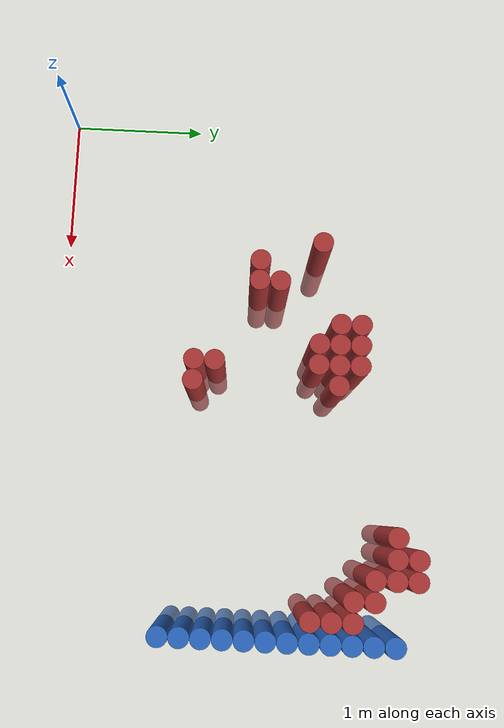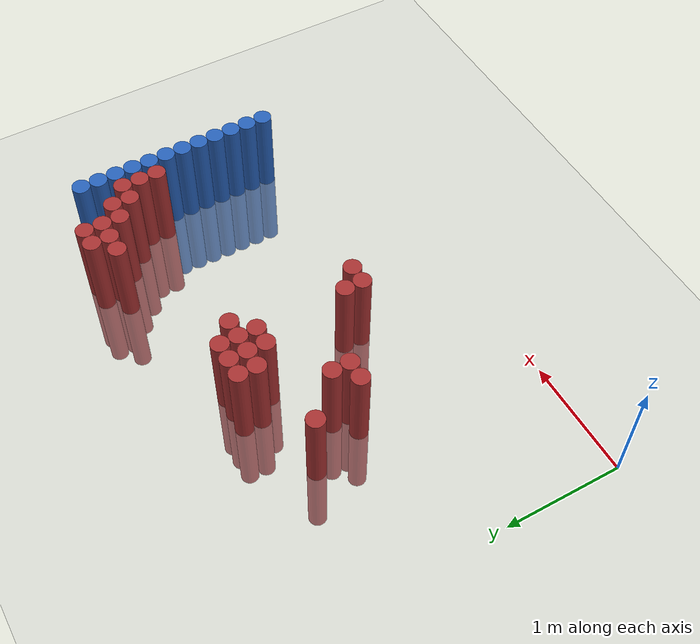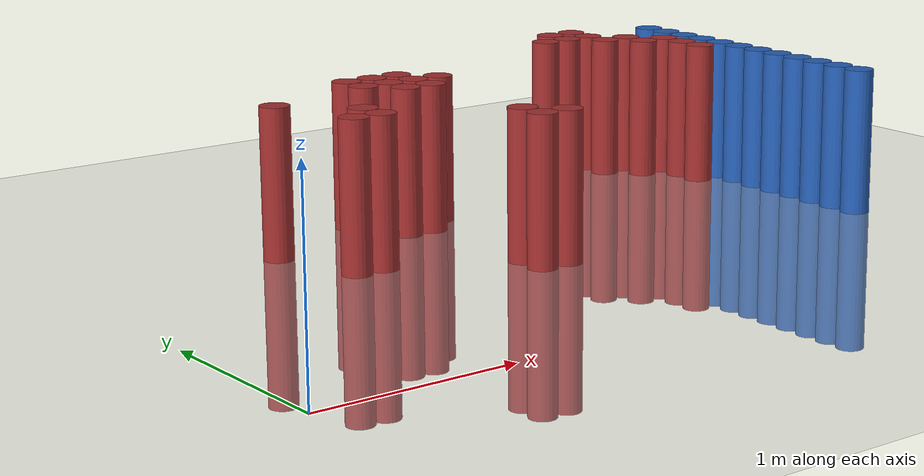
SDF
<sdf version="1.6">
 <world name="default">
  <model name="ground_plane">
   <static>1</static>
   <link name="link">
    <collision name="collision">
     <geometry><plane><normal>0 0 1</normal><size>100 100</size></plane></geometry>
     <surface><friction><ode><mu>100</mu><mu2>50</mu2></ode></friction></surface>
    </collision>
    <visual name="visual">
     <cast_shadows>0</cast_shadows>
     <geometry><plane><normal>0 0 1</normal><size>100 100</size></plane></geometry>
     <material>
      <script><uri>file://media/materials/scripts/gazebo.material</uri><name>Gazebo/Grey</name></script>
     </material>
    </visual>
   </link>
  </model>
  <model name="unit_cylinder_128">
   <static>1</static>
   <pose>3.925000 1.075000 0.000000 0.000000 0.000000 0.000000</pose>
   <link name="link">
    <inertial>
     <mass>1</mass>
     <inertia><ixx>0.145833</ixx><ixy>0</ixy><ixz>0</ixz><iyy>0.145833</iyy><iyz>0</iyz><izz>0.125</izz></inertia>
    </inertial>
    <collision name="collision">
     <geometry><cylinder><radius>0.075000</radius><length>1.5</length></cylinder></geometry>
    </collision>
    <visual name="visual">
     <geometry><cylinder><radius>0.075000</radius><length>1.5</length></cylinder></geometry>
     <material>
      <ambient>0.152000 0.379000 0.720000 1</ambient>
      <diffuse>0.152000 0.379000 0.720000 1</diffuse>
     </material>
     <material>
      <script><name>Gazebo/Grey</name><uri>file://media/materials/scripts/gazebo.material</uri></script>
     </material>
    </visual>
   </link>
  </model>
  <model name="unit_cylinder_130">
   <static>1</static>
   <pose>3.925000 1.225000 0.000000 0.000000 0.000000 0.000000</pose>
   <link name="link">
    <inertial>
     <mass>1</mass>
     <inertia><ixx>0.145833</ixx><ixy>0</ixy><ixz>0</ixz><iyy>0.145833</iyy><iyz>0</iyz><izz>0.125</izz></inertia>
    </inertial>
    <collision name="collision">
     <geometry><cylinder><radius>0.075000</radius><length>1.5</length></cylinder></geometry>
    </collision>
    <visual name="visual">
     <geometry><cylinder><radius>0.075000</radius><length>1.5</length></cylinder></geometry>
     <material>
      <ambient>0.152000 0.379000 0.720000 1</ambient>
      <diffuse>0.152000 0.379000 0.720000 1</diffuse>
     </material>
     <material>
      <script><name>Gazebo/Grey</name><uri>file://media/materials/scripts/gazebo.material</uri></script>
     </material>
    </visual>
   </link>
  </model>
  <model name="unit_cylinder_132">
   <static>1</static>
   <pose>3.925000 1.375000 0.000000 0.000000 0.000000 0.000000</pose>
   <link name="link">
    <inertial>
     <mass>1</mass>
     <inertia><ixx>0.145833</ixx><ixy>0</ixy><ixz>0</ixz><iyy>0.145833</iyy><iyz>0</iyz><izz>0.125</izz></inertia>
    </inertial>
    <collision name="collision">
     <geometry><cylinder><radius>0.075000</radius><length>1.5</length></cylinder></geometry>
    </collision>
    <visual name="visual">
     <geometry><cylinder><radius>0.075000</radius><length>1.5</length></cylinder></geometry>
     <material>
      <ambient>0.152000 0.379000 0.720000 1</ambient>
      <diffuse>0.152000 0.379000 0.720000 1</diffuse>
     </material>
     <material>
      <script><name>Gazebo/Grey</name><uri>file://media/materials/scripts/gazebo.material</uri></script>
     </material>
    </visual>
   </link>
  </model>
  <model name="unit_cylinder_134">
   <static>1</static>
   <pose>3.925000 1.525000 0.000000 0.000000 0.000000 0.000000</pose>
   <link name="link">
    <inertial>
     <mass>1</mass>
     <inertia><ixx>0.145833</ixx><ixy>0</ixy><ixz>0</ixz><iyy>0.145833</iyy><iyz>0</iyz><izz>0.125</izz></inertia>
    </inertial>
    <collision name="collision">
     <geometry><cylinder><radius>0.075000</radius><length>1.5</length></cylinder></geometry>
    </collision>
    <visual name="visual">
     <geometry><cylinder><radius>0.075000</radius><length>1.5</length></cylinder></geometry>
     <material>
      <ambient>0.152000 0.379000 0.720000 1</ambient>
      <diffuse>0.152000 0.379000 0.720000 1</diffuse>
     </material>
     <material>
      <script><name>Gazebo/Grey</name><uri>file://media/materials/scripts/gazebo.material</uri></script>
     </material>
    </visual>
   </link>
  </model>
  <model name="unit_cylinder_136">
   <static>1</static>
   <pose>3.925000 1.675000 0.000000 0.000000 0.000000 0.000000</pose>
   <link name="link">
    <inertial>
     <mass>1</mass>
     <inertia><ixx>0.145833</ixx><ixy>0</ixy><ixz>0</ixz><iyy>0.145833</iyy><iyz>0</iyz><izz>0.125</izz></inertia>
    </inertial>
    <collision name="collision">
     <geometry><cylinder><radius>0.075000</radius><length>1.5</length></cylinder></geometry>
    </collision>
    <visual name="visual">
     <geometry><cylinder><radius>0.075000</radius><length>1.5</length></cylinder></geometry>
     <material>
      <ambient>0.152000 0.379000 0.720000 1</ambient>
      <diffuse>0.152000 0.379000 0.720000 1</diffuse>
     </material>
     <material>
      <script><name>Gazebo/Grey</name><uri>file://media/materials/scripts/gazebo.material</uri></script>
     </material>
    </visual>
   </link>
  </model>
  <model name="unit_cylinder_138">
   <static>1</static>
   <pose>3.925000 1.825000 0.000000 0.000000 0.000000 0.000000</pose>
   <link name="link">
    <inertial>
     <mass>1</mass>
     <inertia><ixx>0.145833</ixx><ixy>0</ixy><ixz>0</ixz><iyy>0.145833</iyy><iyz>0</iyz><izz>0.125</izz></inertia>
    </inertial>
    <collision name="collision">
     <geometry><cylinder><radius>0.075000</radius><length>1.5</length></cylinder></geometry>
    </collision>
    <visual name="visual">
     <geometry><cylinder><radius>0.075000</radius><length>1.5</length></cylinder></geometry>
     <material>
      <ambient>0.152000 0.379000 0.720000 1</ambient>
      <diffuse>0.152000 0.379000 0.720000 1</diffuse>
     </material>
     <material>
      <script><name>Gazebo/Grey</name><uri>file://media/materials/scripts/gazebo.material</uri></script>
     </material>
    </visual>
   </link>
  </model>
  <model name="unit_cylinder_140">
   <static>1</static>
   <pose>3.925000 1.975000 0.000000 0.000000 0.000000 0.000000</pose>
   <link name="link">
    <inertial>
     <mass>1</mass>
     <inertia><ixx>0.145833</ixx><ixy>0</ixy><ixz>0</ixz><iyy>0.145833</iyy><iyz>0</iyz><izz>0.125</izz></inertia>
    </inertial>
    <collision name="collision">
     <geometry><cylinder><radius>0.075000</radius><length>1.5</length></cylinder></geometry>
    </collision>
    <visual name="visual">
     <geometry><cylinder><radius>0.075000</radius><length>1.5</length></cylinder></geometry>
     <material>
      <ambient>0.152000 0.379000 0.720000 1</ambient>
      <diffuse>0.152000 0.379000 0.720000 1</diffuse>
     </material>
     <material>
      <script><name>Gazebo/Grey</name><uri>file://media/materials/scripts/gazebo.material</uri></script>
     </material>
    </visual>
   </link>
  </model>
  <model name="unit_cylinder_142">
   <static>1</static>
   <pose>3.925000 2.125000 0.000000 0.000000 0.000000 0.000000</pose>
   <link name="link">
    <inertial>
     <mass>1</mass>
     <inertia><ixx>0.145833</ixx><ixy>0</ixy><ixz>0</ixz><iyy>0.145833</iyy><iyz>0</iyz><izz>0.125</izz></inertia>
    </inertial>
    <collision name="collision">
     <geometry><cylinder><radius>0.075000</radius><length>1.5</length></cylinder></geometry>
    </collision>
    <visual name="visual">
     <geometry><cylinder><radius>0.075000</radius><length>1.5</length></cylinder></geometry>
     <material>
      <ambient>0.152000 0.379000 0.720000 1</ambient>
      <diffuse>0.152000 0.379000 0.720000 1</diffuse>
     </material>
     <material>
      <script><name>Gazebo/Grey</name><uri>file://media/materials/scripts/gazebo.material</uri></script>
     </material>
    </visual>
   </link>
  </model>
  <model name="unit_cylinder_144">
   <static>1</static>
   <pose>3.925000 2.275000 0.000000 0.000000 0.000000 0.000000</pose>
   <link name="link">
    <inertial>
     <mass>1</mass>
     <inertia><ixx>0.145833</ixx><ixy>0</ixy><ixz>0</ixz><iyy>0.145833</iyy><iyz>0</iyz><izz>0.125</izz></inertia>
    </inertial>
    <collision name="collision">
     <geometry><cylinder><radius>0.075000</radius><length>1.5</length></cylinder></geometry>
    </collision>
    <visual name="visual">
     <geometry><cylinder><radius>0.075000</radius><length>1.5</length></cylinder></geometry>
     <material>
      <ambient>0.152000 0.379000 0.720000 1</ambient>
      <diffuse>0.152000 0.379000 0.720000 1</diffuse>
     </material>
     <material>
      <script><name>Gazebo/Grey</name><uri>file://media/materials/scripts/gazebo.material</uri></script>
     </material>
    </visual>
   </link>
  </model>
  <model name="unit_cylinder_146">
   <static>1</static>
   <pose>3.925000 2.425000 0.000000 0.000000 0.000000 0.000000</pose>
   <link name="link">
    <inertial>
     <mass>1</mass>
     <inertia><ixx>0.145833</ixx><ixy>0</ixy><ixz>0</ixz><iyy>0.145833</iyy><iyz>0</iyz><izz>0.125</izz></inertia>
    </inertial>
    <collision name="collision">
     <geometry><cylinder><radius>0.075000</radius><length>1.5</length></cylinder></geometry>
    </collision>
    <visual name="visual">
     <geometry><cylinder><radius>0.075000</radius><length>1.5</length></cylinder></geometry>
     <material>
      <ambient>0.152000 0.379000 0.720000 1</ambient>
      <diffuse>0.152000 0.379000 0.720000 1</diffuse>
     </material>
     <material>
      <script><name>Gazebo/Grey</name><uri>file://media/materials/scripts/gazebo.material</uri></script>
     </material>
    </visual>
   </link>
  </model>
  <model name="unit_cylinder_148">
   <static>1</static>
   <pose>3.925000 2.575000 0.000000 0.000000 0.000000 0.000000</pose>
   <link name="link">
    <inertial>
     <mass>1</mass>
     <inertia><ixx>0.145833</ixx><ixy>0</ixy><ixz>0</ixz><iyy>0.145833</iyy><iyz>0</iyz><izz>0.125</izz></inertia>
    </inertial>
    <collision name="collision">
     <geometry><cylinder><radius>0.075000</radius><length>1.5</length></cylinder></geometry>
    </collision>
    <visual name="visual">
     <geometry><cylinder><radius>0.075000</radius><length>1.5</length></cylinder></geometry>
     <material>
      <ambient>0.152000 0.379000 0.720000 1</ambient>
      <diffuse>0.152000 0.379000 0.720000 1</diffuse>
     </material>
     <material>
      <script><name>Gazebo/Grey</name><uri>file://media/materials/scripts/gazebo.material</uri></script>
     </material>
    </visual>
   </link>
  </model>
  <model name="unit_cylinder_374">
   <static>1</static>
   <pose>1.075000 1.975000 0.000000 0.000000 0.000000 0.000000</pose>
   <link name="link">
    <inertial>
     <mass>1</mass>
     <inertia><ixx>0.145833</ixx><ixy>0</ixy><ixz>0</ixz><iyy>0.145833</iyy><iyz>0</iyz><izz>0.125</izz></inertia>
    </inertial>
    <collision name="collision">
     <geometry><cylinder><radius>0.075000</radius><length>1.5</length></cylinder></geometry>
    </collision>
    <visual name="visual">
     <geometry><cylinder><radius>0.075000</radius><length>1.5</length></cylinder></geometry>
     <material>
      <ambient>0.648000 0.192000 0.192000 1</ambient>
      <diffuse>0.648000 0.192000 0.192000 1</diffuse>
     </material>
     <material>
      <script><name>Gazebo/Grey</name><uri>file://media/materials/scripts/gazebo.material</uri></script>
     </material>
    </visual>
   </link>
  </model>
  <model name="unit_cylinder_383">
   <static>1</static>
   <pose>1.225000 1.525000 0.000000 0.000000 0.000000 0.000000</pose>
   <link name="link">
    <inertial>
     <mass>1</mass>
     <inertia><ixx>0.145833</ixx><ixy>0</ixy><ixz>0</ixz><iyy>0.145833</iyy><iyz>0</iyz><izz>0.125</izz></inertia>
    </inertial>
    <collision name="collision">
     <geometry><cylinder><radius>0.075000</radius><length>1.5</length></cylinder></geometry>
    </collision>
    <visual name="visual">
     <geometry><cylinder><radius>0.075000</radius><length>1.5</length></cylinder></geometry>
     <material>
      <ambient>0.648000 0.192000 0.192000 1</ambient>
      <diffuse>0.648000 0.192000 0.192000 1</diffuse>
     </material>
     <material>
      <script><name>Gazebo/Grey</name><uri>file://media/materials/scripts/gazebo.material</uri></script>
     </material>
    </visual>
   </link>
  </model>
  <model name="unit_cylinder_392">
   <static>1</static>
   <pose>1.375000 1.525000 0.000000 0.000000 0.000000 0.000000</pose>
   <link name="link">
    <inertial>
     <mass>1</mass>
     <inertia><ixx>0.145833</ixx><ixy>0</ixy><ixz>0</ixz><iyy>0.145833</iyy><iyz>0</iyz><izz>0.125</izz></inertia>
    </inertial>
    <collision name="collision">
     <geometry><cylinder><radius>0.075000</radius><length>1.5</length></cylinder></geometry>
    </collision>
    <visual name="visual">
     <geometry><cylinder><radius>0.075000</radius><length>1.5</length></cylinder></geometry>
     <material>
      <ambient>0.648000 0.192000 0.192000 1</ambient>
      <diffuse>0.648000 0.192000 0.192000 1</diffuse>
     </material>
     <material>
      <script><name>Gazebo/Grey</name><uri>file://media/materials/scripts/gazebo.material</uri></script>
     </material>
    </visual>
   </link>
  </model>
  <model name="unit_cylinder_393">
   <static>1</static>
   <pose>1.375000 1.675000 0.000000 0.000000 0.000000 0.000000</pose>
   <link name="link">
    <inertial>
     <mass>1</mass>
     <inertia><ixx>0.145833</ixx><ixy>0</ixy><ixz>0</ixz><iyy>0.145833</iyy><iyz>0</iyz><izz>0.125</izz></inertia>
    </inertial>
    <collision name="collision">
     <geometry><cylinder><radius>0.075000</radius><length>1.5</length></cylinder></geometry>
    </collision>
    <visual name="visual">
     <geometry><cylinder><radius>0.075000</radius><length>1.5</length></cylinder></geometry>
     <material>
      <ambient>0.648000 0.192000 0.192000 1</ambient>
      <diffuse>0.648000 0.192000 0.192000 1</diffuse>
     </material>
     <material>
      <script><name>Gazebo/Grey</name><uri>file://media/materials/scripts/gazebo.material</uri></script>
     </material>
    </visual>
   </link>
  </model>
  <model name="unit_cylinder_407">
   <static>1</static>
   <pose>1.675000 2.125000 0.000000 0.000000 0.000000 0.000000</pose>
   <link name="link">
    <inertial>
     <mass>1</mass>
     <inertia><ixx>0.145833</ixx><ixy>0</ixy><ixz>0</ixz><iyy>0.145833</iyy><iyz>0</iyz><izz>0.125</izz></inertia>
    </inertial>
    <collision name="collision">
     <geometry><cylinder><radius>0.075000</radius><length>1.5</length></cylinder></geometry>
    </collision>
    <visual name="visual">
     <geometry><cylinder><radius>0.075000</radius><length>1.5</length></cylinder></geometry>
     <material>
      <ambient>0.648000 0.192000 0.192000 1</ambient>
      <diffuse>0.648000 0.192000 0.192000 1</diffuse>
     </material>
     <material>
      <script><name>Gazebo/Grey</name><uri>file://media/materials/scripts/gazebo.material</uri></script>
     </material>
    </visual>
   </link>
  </model>
  <model name="unit_cylinder_408">
   <static>1</static>
   <pose>1.675000 2.275000 0.000000 0.000000 0.000000 0.000000</pose>
   <link name="link">
    <inertial>
     <mass>1</mass>
     <inertia><ixx>0.145833</ixx><ixy>0</ixy><ixz>0</ixz><iyy>0.145833</iyy><iyz>0</iyz><izz>0.125</izz></inertia>
    </inertial>
    <collision name="collision">
     <geometry><cylinder><radius>0.075000</radius><length>1.5</length></cylinder></geometry>
    </collision>
    <visual name="visual">
     <geometry><cylinder><radius>0.075000</radius><length>1.5</length></cylinder></geometry>
     <material>
      <ambient>0.648000 0.192000 0.192000 1</ambient>
      <diffuse>0.648000 0.192000 0.192000 1</diffuse>
     </material>
     <material>
      <script><name>Gazebo/Grey</name><uri>file://media/materials/scripts/gazebo.material</uri></script>
     </material>
    </visual>
   </link>
  </model>
  <model name="unit_cylinder_411">
   <static>1</static>
   <pose>1.825000 1.975000 0.000000 0.000000 0.000000 0.000000</pose>
   <link name="link">
    <inertial>
     <mass>1</mass>
     <inertia><ixx>0.145833</ixx><ixy>0</ixy><ixz>0</ixz><iyy>0.145833</iyy><iyz>0</iyz><izz>0.125</izz></inertia>
    </inertial>
    <collision name="collision">
     <geometry><cylinder><radius>0.075000</radius><length>1.5</length></cylinder></geometry>
    </collision>
    <visual name="visual">
     <geometry><cylinder><radius>0.075000</radius><length>1.5</length></cylinder></geometry>
     <material>
      <ambient>0.648000 0.192000 0.192000 1</ambient>
      <diffuse>0.648000 0.192000 0.192000 1</diffuse>
     </material>
     <material>
      <script><name>Gazebo/Grey</name><uri>file://media/materials/scripts/gazebo.material</uri></script>
     </material>
    </visual>
   </link>
  </model>
  <model name="unit_cylinder_412">
   <static>1</static>
   <pose>1.825000 2.125000 0.000000 0.000000 0.000000 0.000000</pose>
   <link name="link">
    <inertial>
     <mass>1</mass>
     <inertia><ixx>0.145833</ixx><ixy>0</ixy><ixz>0</ixz><iyy>0.145833</iyy><iyz>0</iyz><izz>0.125</izz></inertia>
    </inertial>
    <collision name="collision">
     <geometry><cylinder><radius>0.075000</radius><length>1.5</length></cylinder></geometry>
    </collision>
    <visual name="visual">
     <geometry><cylinder><radius>0.075000</radius><length>1.5</length></cylinder></geometry>
     <material>
      <ambient>0.648000 0.192000 0.192000 1</ambient>
      <diffuse>0.648000 0.192000 0.192000 1</diffuse>
     </material>
     <material>
      <script><name>Gazebo/Grey</name><uri>file://media/materials/scripts/gazebo.material</uri></script>
     </material>
    </visual>
   </link>
  </model>
  <model name="unit_cylinder_413">
   <static>1</static>
   <pose>1.825000 2.275000 0.000000 0.000000 0.000000 0.000000</pose>
   <link name="link">
    <inertial>
     <mass>1</mass>
     <inertia><ixx>0.145833</ixx><ixy>0</ixy><ixz>0</ixz><iyy>0.145833</iyy><iyz>0</iyz><izz>0.125</izz></inertia>
    </inertial>
    <collision name="collision">
     <geometry><cylinder><radius>0.075000</radius><length>1.5</length></cylinder></geometry>
    </collision>
    <visual name="visual">
     <geometry><cylinder><radius>0.075000</radius><length>1.5</length></cylinder></geometry>
     <material>
      <ambient>0.648000 0.192000 0.192000 1</ambient>
      <diffuse>0.648000 0.192000 0.192000 1</diffuse>
     </material>
     <material>
      <script><name>Gazebo/Grey</name><uri>file://media/materials/scripts/gazebo.material</uri></script>
     </material>
    </visual>
   </link>
  </model>
  <model name="unit_cylinder_417">
   <static>1</static>
   <pose>1.975000 1.075000 0.000000 0.000000 0.000000 0.000000</pose>
   <link name="link">
    <inertial>
     <mass>1</mass>
     <inertia><ixx>0.145833</ixx><ixy>0</ixy><ixz>0</ixz><iyy>0.145833</iyy><iyz>0</iyz><izz>0.125</izz></inertia>
    </inertial>
    <collision name="collision">
     <geometry><cylinder><radius>0.075000</radius><length>1.5</length></cylinder></geometry>
    </collision>
    <visual name="visual">
     <geometry><cylinder><radius>0.075000</radius><length>1.5</length></cylinder></geometry>
     <material>
      <ambient>0.648000 0.192000 0.192000 1</ambient>
      <diffuse>0.648000 0.192000 0.192000 1</diffuse>
     </material>
     <material>
      <script><name>Gazebo/Grey</name><uri>file://media/materials/scripts/gazebo.material</uri></script>
     </material>
    </visual>
   </link>
  </model>
  <model name="unit_cylinder_418">
   <static>1</static>
   <pose>1.975000 1.225000 0.000000 0.000000 0.000000 0.000000</pose>
   <link name="link">
    <inertial>
     <mass>1</mass>
     <inertia><ixx>0.145833</ixx><ixy>0</ixy><ixz>0</ixz><iyy>0.145833</iyy><iyz>0</iyz><izz>0.125</izz></inertia>
    </inertial>
    <collision name="collision">
     <geometry><cylinder><radius>0.075000</radius><length>1.5</length></cylinder></geometry>
    </collision>
    <visual name="visual">
     <geometry><cylinder><radius>0.075000</radius><length>1.5</length></cylinder></geometry>
     <material>
      <ambient>0.648000 0.192000 0.192000 1</ambient>
      <diffuse>0.648000 0.192000 0.192000 1</diffuse>
     </material>
     <material>
      <script><name>Gazebo/Grey</name><uri>file://media/materials/scripts/gazebo.material</uri></script>
     </material>
    </visual>
   </link>
  </model>
  <model name="unit_cylinder_419">
   <static>1</static>
   <pose>1.975000 1.975000 0.000000 0.000000 0.000000 0.000000</pose>
   <link name="link">
    <inertial>
     <mass>1</mass>
     <inertia><ixx>0.145833</ixx><ixy>0</ixy><ixz>0</ixz><iyy>0.145833</iyy><iyz>0</iyz><izz>0.125</izz></inertia>
    </inertial>
    <collision name="collision">
     <geometry><cylinder><radius>0.075000</radius><length>1.5</length></cylinder></geometry>
    </collision>
    <visual name="visual">
     <geometry><cylinder><radius>0.075000</radius><length>1.5</length></cylinder></geometry>
     <material>
      <ambient>0.648000 0.192000 0.192000 1</ambient>
      <diffuse>0.648000 0.192000 0.192000 1</diffuse>
     </material>
     <material>
      <script><name>Gazebo/Grey</name><uri>file://media/materials/scripts/gazebo.material</uri></script>
     </material>
    </visual>
   </link>
  </model>
  <model name="unit_cylinder_420">
   <static>1</static>
   <pose>1.975000 2.125000 0.000000 0.000000 0.000000 0.000000</pose>
   <link name="link">
    <inertial>
     <mass>1</mass>
     <inertia><ixx>0.145833</ixx><ixy>0</ixy><ixz>0</ixz><iyy>0.145833</iyy><iyz>0</iyz><izz>0.125</izz></inertia>
    </inertial>
    <collision name="collision">
     <geometry><cylinder><radius>0.075000</radius><length>1.5</length></cylinder></geometry>
    </collision>
    <visual name="visual">
     <geometry><cylinder><radius>0.075000</radius><length>1.5</length></cylinder></geometry>
     <material>
      <ambient>0.648000 0.192000 0.192000 1</ambient>
      <diffuse>0.648000 0.192000 0.192000 1</diffuse>
     </material>
     <material>
      <script><name>Gazebo/Grey</name><uri>file://media/materials/scripts/gazebo.material</uri></script>
     </material>
    </visual>
   </link>
  </model>
  <model name="unit_cylinder_421">
   <static>1</static>
   <pose>1.975000 2.275000 0.000000 0.000000 0.000000 0.000000</pose>
   <link name="link">
    <inertial>
     <mass>1</mass>
     <inertia><ixx>0.145833</ixx><ixy>0</ixy><ixz>0</ixz><iyy>0.145833</iyy><iyz>0</iyz><izz>0.125</izz></inertia>
    </inertial>
    <collision name="collision">
     <geometry><cylinder><radius>0.075000</radius><length>1.5</length></cylinder></geometry>
    </collision>
    <visual name="visual">
     <geometry><cylinder><radius>0.075000</radius><length>1.5</length></cylinder></geometry>
     <material>
      <ambient>0.648000 0.192000 0.192000 1</ambient>
      <diffuse>0.648000 0.192000 0.192000 1</diffuse>
     </material>
     <material>
      <script><name>Gazebo/Grey</name><uri>file://media/materials/scripts/gazebo.material</uri></script>
     </material>
    </visual>
   </link>
  </model>
  <model name="unit_cylinder_426">
   <static>1</static>
   <pose>2.125000 1.075000 0.000000 0.000000 0.000000 0.000000</pose>
   <link name="link">
    <inertial>
     <mass>1</mass>
     <inertia><ixx>0.145833</ixx><ixy>0</ixy><ixz>0</ixz><iyy>0.145833</iyy><iyz>0</iyz><izz>0.125</izz></inertia>
    </inertial>
    <collision name="collision">
     <geometry><cylinder><radius>0.075000</radius><length>1.5</length></cylinder></geometry>
    </collision>
    <visual name="visual">
     <geometry><cylinder><radius>0.075000</radius><length>1.5</length></cylinder></geometry>
     <material>
      <ambient>0.648000 0.192000 0.192000 1</ambient>
      <diffuse>0.648000 0.192000 0.192000 1</diffuse>
     </material>
     <material>
      <script><name>Gazebo/Grey</name><uri>file://media/materials/scripts/gazebo.material</uri></script>
     </material>
    </visual>
   </link>
  </model>
  <model name="unit_cylinder_427">
   <static>1</static>
   <pose>2.125000 2.125000 0.000000 0.000000 0.000000 0.000000</pose>
   <link name="link">
    <inertial>
     <mass>1</mass>
     <inertia><ixx>0.145833</ixx><ixy>0</ixy><ixz>0</ixz><iyy>0.145833</iyy><iyz>0</iyz><izz>0.125</izz></inertia>
    </inertial>
    <collision name="collision">
     <geometry><cylinder><radius>0.075000</radius><length>1.5</length></cylinder></geometry>
    </collision>
    <visual name="visual">
     <geometry><cylinder><radius>0.075000</radius><length>1.5</length></cylinder></geometry>
     <material>
      <ambient>0.648000 0.192000 0.192000 1</ambient>
      <diffuse>0.648000 0.192000 0.192000 1</diffuse>
     </material>
     <material>
      <script><name>Gazebo/Grey</name><uri>file://media/materials/scripts/gazebo.material</uri></script>
     </material>
    </visual>
   </link>
  </model>
  <model name="unit_cylinder_453">
   <static>1</static>
   <pose>3.175000 2.575000 0.000000 0.000000 0.000000 0.000000</pose>
   <link name="link">
    <inertial>
     <mass>1</mass>
     <inertia><ixx>0.145833</ixx><ixy>0</ixy><ixz>0</ixz><iyy>0.145833</iyy><iyz>0</iyz><izz>0.125</izz></inertia>
    </inertial>
    <collision name="collision">
     <geometry><cylinder><radius>0.075000</radius><length>1.5</length></cylinder></geometry>
    </collision>
    <visual name="visual">
     <geometry><cylinder><radius>0.075000</radius><length>1.5</length></cylinder></geometry>
     <material>
      <ambient>0.648000 0.192000 0.192000 1</ambient>
      <diffuse>0.648000 0.192000 0.192000 1</diffuse>
     </material>
     <material>
      <script><name>Gazebo/Grey</name><uri>file://media/materials/scripts/gazebo.material</uri></script>
     </material>
    </visual>
   </link>
  </model>
  <model name="unit_cylinder_455">
   <static>1</static>
   <pose>3.325000 2.575000 0.000000 0.000000 0.000000 0.000000</pose>
   <link name="link">
    <inertial>
     <mass>1</mass>
     <inertia><ixx>0.145833</ixx><ixy>0</ixy><ixz>0</ixz><iyy>0.145833</iyy><iyz>0</iyz><izz>0.125</izz></inertia>
    </inertial>
    <collision name="collision">
     <geometry><cylinder><radius>0.075000</radius><length>1.5</length></cylinder></geometry>
    </collision>
    <visual name="visual">
     <geometry><cylinder><radius>0.075000</radius><length>1.5</length></cylinder></geometry>
     <material>
      <ambient>0.648000 0.192000 0.192000 1</ambient>
      <diffuse>0.648000 0.192000 0.192000 1</diffuse>
     </material>
     <material>
      <script><name>Gazebo/Grey</name><uri>file://media/materials/scripts/gazebo.material</uri></script>
     </material>
    </visual>
   </link>
  </model>
  <model name="unit_cylinder_456">
   <static>1</static>
   <pose>3.325000 2.725000 0.000000 0.000000 0.000000 0.000000</pose>
   <link name="link">
    <inertial>
     <mass>1</mass>
     <inertia><ixx>0.145833</ixx><ixy>0</ixy><ixz>0</ixz><iyy>0.145833</iyy><iyz>0</iyz><izz>0.125</izz></inertia>
    </inertial>
    <collision name="collision">
     <geometry><cylinder><radius>0.075000</radius><length>1.5</length></cylinder></geometry>
    </collision>
    <visual name="visual">
     <geometry><cylinder><radius>0.075000</radius><length>1.5</length></cylinder></geometry>
     <material>
      <ambient>0.648000 0.192000 0.192000 1</ambient>
      <diffuse>0.648000 0.192000 0.192000 1</diffuse>
     </material>
     <material>
      <script><name>Gazebo/Grey</name><uri>file://media/materials/scripts/gazebo.material</uri></script>
     </material>
    </visual>
   </link>
  </model>
  <model name="unit_cylinder_459">
   <static>1</static>
   <pose>3.475000 2.425000 0.000000 0.000000 0.000000 0.000000</pose>
   <link name="link">
    <inertial>
     <mass>1</mass>
     <inertia><ixx>0.145833</ixx><ixy>0</ixy><ixz>0</ixz><iyy>0.145833</iyy><iyz>0</iyz><izz>0.125</izz></inertia>
    </inertial>
    <collision name="collision">
     <geometry><cylinder><radius>0.075000</radius><length>1.5</length></cylinder></geometry>
    </collision>
    <visual name="visual">
     <geometry><cylinder><radius>0.075000</radius><length>1.5</length></cylinder></geometry>
     <material>
      <ambient>0.648000 0.192000 0.192000 1</ambient>
      <diffuse>0.648000 0.192000 0.192000 1</diffuse>
     </material>
     <material>
      <script><name>Gazebo/Grey</name><uri>file://media/materials/scripts/gazebo.material</uri></script>
     </material>
    </visual>
   </link>
  </model>
  <model name="unit_cylinder_460">
   <static>1</static>
   <pose>3.475000 2.575000 0.000000 0.000000 0.000000 0.000000</pose>
   <link name="link">
    <inertial>
     <mass>1</mass>
     <inertia><ixx>0.145833</ixx><ixy>0</ixy><ixz>0</ixz><iyy>0.145833</iyy><iyz>0</iyz><izz>0.125</izz></inertia>
    </inertial>
    <collision name="collision">
     <geometry><cylinder><radius>0.075000</radius><length>1.5</length></cylinder></geometry>
    </collision>
    <visual name="visual">
     <geometry><cylinder><radius>0.075000</radius><length>1.5</length></cylinder></geometry>
     <material>
      <ambient>0.648000 0.192000 0.192000 1</ambient>
      <diffuse>0.648000 0.192000 0.192000 1</diffuse>
     </material>
     <material>
      <script><name>Gazebo/Grey</name><uri>file://media/materials/scripts/gazebo.material</uri></script>
     </material>
    </visual>
   </link>
  </model>
  <model name="unit_cylinder_461">
   <static>1</static>
   <pose>3.475000 2.725000 0.000000 0.000000 0.000000 0.000000</pose>
   <link name="link">
    <inertial>
     <mass>1</mass>
     <inertia><ixx>0.145833</ixx><ixy>0</ixy><ixz>0</ixz><iyy>0.145833</iyy><iyz>0</iyz><izz>0.125</izz></inertia>
    </inertial>
    <collision name="collision">
     <geometry><cylinder><radius>0.075000</radius><length>1.5</length></cylinder></geometry>
    </collision>
    <visual name="visual">
     <geometry><cylinder><radius>0.075000</radius><length>1.5</length></cylinder></geometry>
     <material>
      <ambient>0.648000 0.192000 0.192000 1</ambient>
      <diffuse>0.648000 0.192000 0.192000 1</diffuse>
     </material>
     <material>
      <script><name>Gazebo/Grey</name><uri>file://media/materials/scripts/gazebo.material</uri></script>
     </material>
    </visual>
   </link>
  </model>
  <model name="unit_cylinder_471">
   <static>1</static>
   <pose>3.625000 2.275000 0.000000 0.000000 0.000000 0.000000</pose>
   <link name="link">
    <inertial>
     <mass>1</mass>
     <inertia><ixx>0.145833</ixx><ixy>0</ixy><ixz>0</ixz><iyy>0.145833</iyy><iyz>0</iyz><izz>0.125</izz></inertia>
    </inertial>
    <collision name="collision">
     <geometry><cylinder><radius>0.075000</radius><length>1.5</length></cylinder></geometry>
    </collision>
    <visual name="visual">
     <geometry><cylinder><radius>0.075000</radius><length>1.5</length></cylinder></geometry>
     <material>
      <ambient>0.648000 0.192000 0.192000 1</ambient>
      <diffuse>0.648000 0.192000 0.192000 1</diffuse>
     </material>
     <material>
      <script><name>Gazebo/Grey</name><uri>file://media/materials/scripts/gazebo.material</uri></script>
     </material>
    </visual>
   </link>
  </model>
  <model name="unit_cylinder_472">
   <static>1</static>
   <pose>3.625000 2.425000 0.000000 0.000000 0.000000 0.000000</pose>
   <link name="link">
    <inertial>
     <mass>1</mass>
     <inertia><ixx>0.145833</ixx><ixy>0</ixy><ixz>0</ixz><iyy>0.145833</iyy><iyz>0</iyz><izz>0.125</izz></inertia>
    </inertial>
    <collision name="collision">
     <geometry><cylinder><radius>0.075000</radius><length>1.5</length></cylinder></geometry>
    </collision>
    <visual name="visual">
     <geometry><cylinder><radius>0.075000</radius><length>1.5</length></cylinder></geometry>
     <material>
      <ambient>0.648000 0.192000 0.192000 1</ambient>
      <diffuse>0.648000 0.192000 0.192000 1</diffuse>
     </material>
     <material>
      <script><name>Gazebo/Grey</name><uri>file://media/materials/scripts/gazebo.material</uri></script>
     </material>
    </visual>
   </link>
  </model>
  <model name="unit_cylinder_487">
   <static>1</static>
   <pose>3.775000 1.975000 0.000000 0.000000 0.000000 0.000000</pose>
   <link name="link">
    <inertial>
     <mass>1</mass>
     <inertia><ixx>0.145833</ixx><ixy>0</ixy><ixz>0</ixz><iyy>0.145833</iyy><iyz>0</iyz><izz>0.125</izz></inertia>
    </inertial>
    <collision name="collision">
     <geometry><cylinder><radius>0.075000</radius><length>1.5</length></cylinder></geometry>
    </collision>
    <visual name="visual">
     <geometry><cylinder><radius>0.075000</radius><length>1.5</length></cylinder></geometry>
     <material>
      <ambient>0.648000 0.192000 0.192000 1</ambient>
      <diffuse>0.648000 0.192000 0.192000 1</diffuse>
     </material>
     <material>
      <script><name>Gazebo/Grey</name><uri>file://media/materials/scripts/gazebo.material</uri></script>
     </material>
    </visual>
   </link>
  </model>
  <model name="unit_cylinder_488">
   <static>1</static>
   <pose>3.775000 2.125000 0.000000 0.000000 0.000000 0.000000</pose>
   <link name="link">
    <inertial>
     <mass>1</mass>
     <inertia><ixx>0.145833</ixx><ixy>0</ixy><ixz>0</ixz><iyy>0.145833</iyy><iyz>0</iyz><izz>0.125</izz></inertia>
    </inertial>
    <collision name="collision">
     <geometry><cylinder><radius>0.075000</radius><length>1.5</length></cylinder></geometry>
    </collision>
    <visual name="visual">
     <geometry><cylinder><radius>0.075000</radius><length>1.5</length></cylinder></geometry>
     <material>
      <ambient>0.648000 0.192000 0.192000 1</ambient>
      <diffuse>0.648000 0.192000 0.192000 1</diffuse>
     </material>
     <material>
      <script><name>Gazebo/Grey</name><uri>file://media/materials/scripts/gazebo.material</uri></script>
     </material>
    </visual>
   </link>
  </model>
  <model name="unit_cylinder_489">
   <static>1</static>
   <pose>3.775000 2.275000 0.000000 0.000000 0.000000 0.000000</pose>
   <link name="link">
    <inertial>
     <mass>1</mass>
     <inertia><ixx>0.145833</ixx><ixy>0</ixy><ixz>0</ixz><iyy>0.145833</iyy><iyz>0</iyz><izz>0.125</izz></inertia>
    </inertial>
    <collision name="collision">
     <geometry><cylinder><radius>0.075000</radius><length>1.5</length></cylinder></geometry>
    </collision>
    <visual name="visual">
     <geometry><cylinder><radius>0.075000</radius><length>1.5</length></cylinder></geometry>
     <material>
      <ambient>0.648000 0.192000 0.192000 1</ambient>
      <diffuse>0.648000 0.192000 0.192000 1</diffuse>
     </material>
     <material>
      <script><name>Gazebo/Grey</name><uri>file://media/materials/scripts/gazebo.material</uri></script>
     </material>
    </visual>
   </link>
  </model>
  <model name="unit_cylinder_517">
   <static>1</static>
   <pose>3.925000 0.925000 0.000000 0.000000 0.000000 0.000000</pose>
   <link name="link">
    <inertial>
     <mass>1</mass>
     <inertia><ixx>0.145833</ixx><ixy>0</ixy><ixz>0</ixz><iyy>0.145833</iyy><iyz>0</iyz><izz>0.125</izz></inertia>
    </inertial>
    <collision name="collision">
     <geometry><cylinder><radius>0.075000</radius><length>1.5</length></cylinder></geometry>
    </collision>
    <visual name="visual">
     <geometry><cylinder><radius>0.075000</radius><length>1.5</length></cylinder></geometry>
     <material>
      <ambient>0.152000 0.379000 0.720000 1</ambient>
      <diffuse>0.152000 0.379000 0.720000 1</diffuse>
     </material>
     <material>
      <script><name>Gazebo/Grey</name><uri>file://media/materials/scripts/gazebo.material</uri></script>
     </material>
    </visual>
   </link>
  </model>
  <model name="unit_cylinder_518">
   <static>1</static>
   <pose>3.925000 1.075000 0.000000 0.000000 0.000000 0.000000</pose>
   <link name="link">
    <inertial>
     <mass>1</mass>
     <inertia><ixx>0.145833</ixx><ixy>0</ixy><ixz>0</ixz><iyy>0.145833</iyy><iyz>0</iyz><izz>0.125</izz></inertia>
    </inertial>
    <collision name="collision">
     <geometry><cylinder><radius>0.075000</radius><length>1.5</length></cylinder></geometry>
    </collision>
    <visual name="visual">
     <geometry><cylinder><radius>0.075000</radius><length>1.5</length></cylinder></geometry>
     <material>
      <ambient>0.152000 0.379000 0.720000 1</ambient>
      <diffuse>0.152000 0.379000 0.720000 1</diffuse>
     </material>
     <material>
      <script><name>Gazebo/Grey</name><uri>file://media/materials/scripts/gazebo.material</uri></script>
     </material>
    </visual>
   </link>
  </model>
  <model name="unit_cylinder_519">
   <static>1</static>
   <pose>3.925000 1.225000 0.000000 0.000000 0.000000 0.000000</pose>
   <link name="link">
    <inertial>
     <mass>1</mass>
     <inertia><ixx>0.145833</ixx><ixy>0</ixy><ixz>0</ixz><iyy>0.145833</iyy><iyz>0</iyz><izz>0.125</izz></inertia>
    </inertial>
    <collision name="collision">
     <geometry><cylinder><radius>0.075000</radius><length>1.5</length></cylinder></geometry>
    </collision>
    <visual name="visual">
     <geometry><cylinder><radius>0.075000</radius><length>1.5</length></cylinder></geometry>
     <material>
      <ambient>0.152000 0.379000 0.720000 1</ambient>
      <diffuse>0.152000 0.379000 0.720000 1</diffuse>
     </material>
     <material>
      <script><name>Gazebo/Grey</name><uri>file://media/materials/scripts/gazebo.material</uri></script>
     </material>
    </visual>
   </link>
  </model>
  <model name="unit_cylinder_520">
   <static>1</static>
   <pose>3.925000 1.375000 0.000000 0.000000 0.000000 0.000000</pose>
   <link name="link">
    <inertial>
     <mass>1</mass>
     <inertia><ixx>0.145833</ixx><ixy>0</ixy><ixz>0</ixz><iyy>0.145833</iyy><iyz>0</iyz><izz>0.125</izz></inertia>
    </inertial>
    <collision name="collision">
     <geometry><cylinder><radius>0.075000</radius><length>1.5</length></cylinder></geometry>
    </collision>
    <visual name="visual">
     <geometry><cylinder><radius>0.075000</radius><length>1.5</length></cylinder></geometry>
     <material>
      <ambient>0.152000 0.379000 0.720000 1</ambient>
      <diffuse>0.152000 0.379000 0.720000 1</diffuse>
     </material>
     <material>
      <script><name>Gazebo/Grey</name><uri>file://media/materials/scripts/gazebo.material</uri></script>
     </material>
    </visual>
   </link>
  </model>
  <model name="unit_cylinder_521">
   <static>1</static>
   <pose>3.925000 1.525000 0.000000 0.000000 0.000000 0.000000</pose>
   <link name="link">
    <inertial>
     <mass>1</mass>
     <inertia><ixx>0.145833</ixx><ixy>0</ixy><ixz>0</ixz><iyy>0.145833</iyy><iyz>0</iyz><izz>0.125</izz></inertia>
    </inertial>
    <collision name="collision">
     <geometry><cylinder><radius>0.075000</radius><length>1.5</length></cylinder></geometry>
    </collision>
    <visual name="visual">
     <geometry><cylinder><radius>0.075000</radius><length>1.5</length></cylinder></geometry>
     <material>
      <ambient>0.152000 0.379000 0.720000 1</ambient>
      <diffuse>0.152000 0.379000 0.720000 1</diffuse>
     </material>
     <material>
      <script><name>Gazebo/Grey</name><uri>file://media/materials/scripts/gazebo.material</uri></script>
     </material>
    </visual>
   </link>
  </model>
  <model name="unit_cylinder_522">
   <static>1</static>
   <pose>3.925000 1.675000 0.000000 0.000000 0.000000 0.000000</pose>
   <link name="link">
    <inertial>
     <mass>1</mass>
     <inertia><ixx>0.145833</ixx><ixy>0</ixy><ixz>0</ixz><iyy>0.145833</iyy><iyz>0</iyz><izz>0.125</izz></inertia>
    </inertial>
    <collision name="collision">
     <geometry><cylinder><radius>0.075000</radius><length>1.5</length></cylinder></geometry>
    </collision>
    <visual name="visual">
     <geometry><cylinder><radius>0.075000</radius><length>1.5</length></cylinder></geometry>
     <material>
      <ambient>0.152000 0.379000 0.720000 1</ambient>
      <diffuse>0.152000 0.379000 0.720000 1</diffuse>
     </material>
     <material>
      <script><name>Gazebo/Grey</name><uri>file://media/materials/scripts/gazebo.material</uri></script>
     </material>
    </visual>
   </link>
  </model>
  <model name="unit_cylinder_523">
   <static>1</static>
   <pose>3.925000 1.825000 0.000000 0.000000 0.000000 0.000000</pose>
   <link name="link">
    <inertial>
     <mass>1</mass>
     <inertia><ixx>0.145833</ixx><ixy>0</ixy><ixz>0</ixz><iyy>0.145833</iyy><iyz>0</iyz><izz>0.125</izz></inertia>
    </inertial>
    <collision name="collision">
     <geometry><cylinder><radius>0.075000</radius><length>1.5</length></cylinder></geometry>
    </collision>
    <visual name="visual">
     <geometry><cylinder><radius>0.075000</radius><length>1.5</length></cylinder></geometry>
     <material>
      <ambient>0.152000 0.379000 0.720000 1</ambient>
      <diffuse>0.152000 0.379000 0.720000 1</diffuse>
     </material>
     <material>
      <script><name>Gazebo/Grey</name><uri>file://media/materials/scripts/gazebo.material</uri></script>
     </material>
    </visual>
   </link>
  </model>
  <model name="unit_cylinder_524">
   <static>1</static>
   <pose>3.925000 1.975000 0.000000 0.000000 0.000000 0.000000</pose>
   <link name="link">
    <inertial>
     <mass>1</mass>
     <inertia><ixx>0.145833</ixx><ixy>0</ixy><ixz>0</ixz><iyy>0.145833</iyy><iyz>0</iyz><izz>0.125</izz></inertia>
    </inertial>
    <collision name="collision">
     <geometry><cylinder><radius>0.075000</radius><length>1.5</length></cylinder></geometry>
    </collision>
    <visual name="visual">
     <geometry><cylinder><radius>0.075000</radius><length>1.5</length></cylinder></geometry>
     <material>
      <ambient>0.152000 0.379000 0.720000 1</ambient>
      <diffuse>0.152000 0.379000 0.720000 1</diffuse>
     </material>
     <material>
      <script><name>Gazebo/Grey</name><uri>file://media/materials/scripts/gazebo.material</uri></script>
     </material>
    </visual>
   </link>
  </model>
  <model name="unit_cylinder_525">
   <static>1</static>
   <pose>3.925000 2.125000 0.000000 0.000000 0.000000 0.000000</pose>
   <link name="link">
    <inertial>
     <mass>1</mass>
     <inertia><ixx>0.145833</ixx><ixy>0</ixy><ixz>0</ixz><iyy>0.145833</iyy><iyz>0</iyz><izz>0.125</izz></inertia>
    </inertial>
    <collision name="collision">
     <geometry><cylinder><radius>0.075000</radius><length>1.5</length></cylinder></geometry>
    </collision>
    <visual name="visual">
     <geometry><cylinder><radius>0.075000</radius><length>1.5</length></cylinder></geometry>
     <material>
      <ambient>0.152000 0.379000 0.720000 1</ambient>
      <diffuse>0.152000 0.379000 0.720000 1</diffuse>
     </material>
     <material>
      <script><name>Gazebo/Grey</name><uri>file://media/materials/scripts/gazebo.material</uri></script>
     </material>
    </visual>
   </link>
  </model>
  <model name="unit_cylinder_526">
   <static>1</static>
   <pose>3.925000 2.275000 0.000000 0.000000 0.000000 0.000000</pose>
   <link name="link">
    <inertial>
     <mass>1</mass>
     <inertia><ixx>0.145833</ixx><ixy>0</ixy><ixz>0</ixz><iyy>0.145833</iyy><iyz>0</iyz><izz>0.125</izz></inertia>
    </inertial>
    <collision name="collision">
     <geometry><cylinder><radius>0.075000</radius><length>1.5</length></cylinder></geometry>
    </collision>
    <visual name="visual">
     <geometry><cylinder><radius>0.075000</radius><length>1.5</length></cylinder></geometry>
     <material>
      <ambient>0.152000 0.379000 0.720000 1</ambient>
      <diffuse>0.152000 0.379000 0.720000 1</diffuse>
     </material>
     <material>
      <script><name>Gazebo/Grey</name><uri>file://media/materials/scripts/gazebo.material</uri></script>
     </material>
    </visual>
   </link>
  </model>
  <model name="unit_cylinder_527">
   <static>1</static>
   <pose>3.925000 2.425000 0.000000 0.000000 0.000000 0.000000</pose>
   <link name="link">
    <inertial>
     <mass>1</mass>
     <inertia><ixx>0.145833</ixx><ixy>0</ixy><ixz>0</ixz><iyy>0.145833</iyy><iyz>0</iyz><izz>0.125</izz></inertia>
    </inertial>
    <collision name="collision">
     <geometry><cylinder><radius>0.075000</radius><length>1.5</length></cylinder></geometry>
    </collision>
    <visual name="visual">
     <geometry><cylinder><radius>0.075000</radius><length>1.5</length></cylinder></geometry>
     <material>
      <ambient>0.152000 0.379000 0.720000 1</ambient>
      <diffuse>0.152000 0.379000 0.720000 1</diffuse>
     </material>
     <material>
      <script><name>Gazebo/Grey</name><uri>file://media/materials/scripts/gazebo.material</uri></script>
     </material>
    </visual>
   </link>
  </model>
  <model name="unit_cylinder_528">
   <static>1</static>
   <pose>3.925000 2.575000 0.000000 0.000000 0.000000 0.000000</pose>
   <link name="link">
    <inertial>
     <mass>1</mass>
     <inertia><ixx>0.145833</ixx><ixy>0</ixy><ixz>0</ixz><iyy>0.145833</iyy><iyz>0</iyz><izz>0.125</izz></inertia>
    </inertial>
    <collision name="collision">
     <geometry><cylinder><radius>0.075000</radius><length>1.5</length></cylinder></geometry>
    </collision>
    <visual name="visual">
     <geometry><cylinder><radius>0.075000</radius><length>1.5</length></cylinder></geometry>
     <material>
      <ambient>0.152000 0.379000 0.720000 1</ambient>
      <diffuse>0.152000 0.379000 0.720000 1</diffuse>
     </material>
     <material>
      <script><name>Gazebo/Grey</name><uri>file://media/materials/scripts/gazebo.material</uri></script>
     </material>
    </visual>
   </link>
  </model>
 </world>
</sdf>
